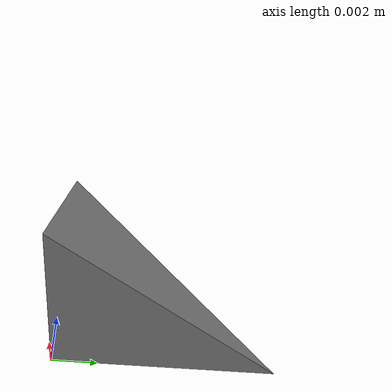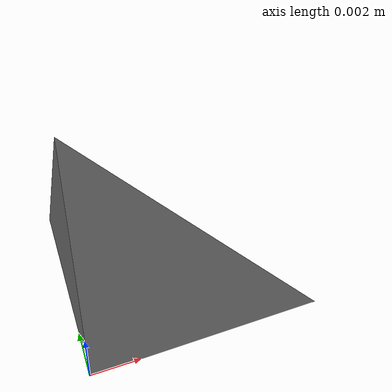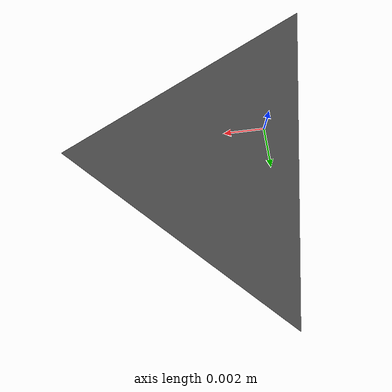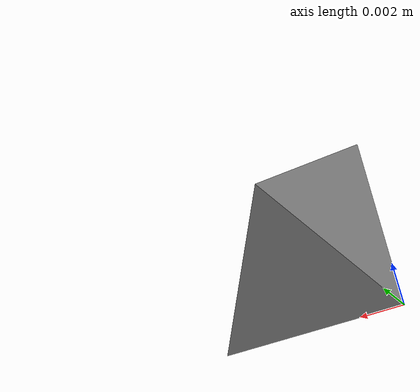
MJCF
<mujoco model="BrokenActuatorFixture">
  <compiler angle="radian" meshdir="../assets/meshes"/>
  <asset>
    <mesh name="left_hip_pitch_link.STL" file="LEFT_HIP_PITCH.STL"/>
  </asset>
  <worldbody>
    <body name="pelvis_link">
      <freejoint name="floating_base"/>
      <body name="left_hip_pitch_link">
        <joint name="left_hip_pitch_joint" type="hinge" range="-1 1" axis="0 1 0"/>
        <geom name="left_hip_pitch_visual" type="mesh" mesh="left_hip_pitch_link.STL"/>
      </body>
    </body>
  </worldbody>
  <actuator>
    <motor name="bad_motor" joint="missing_joint" ctrlrange="-1 1"/>
  </actuator>
</mujoco>
